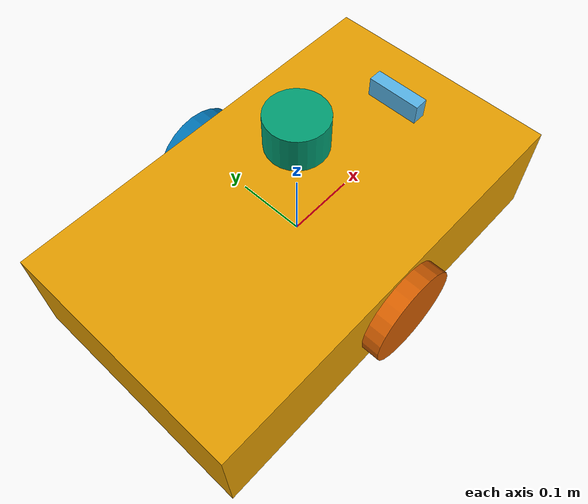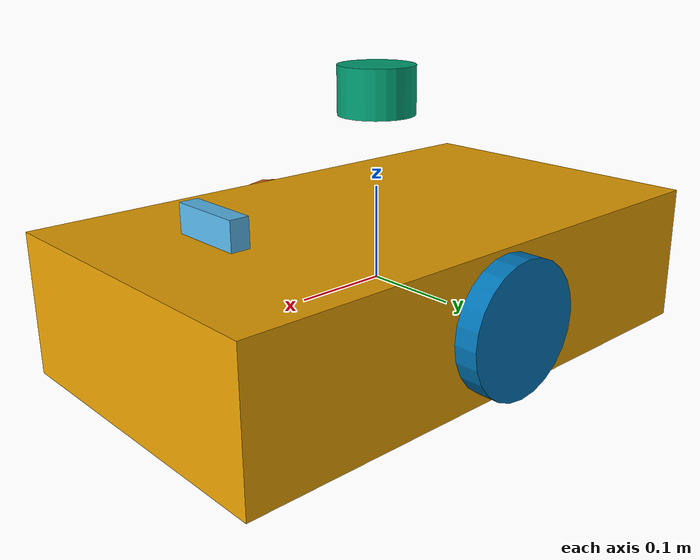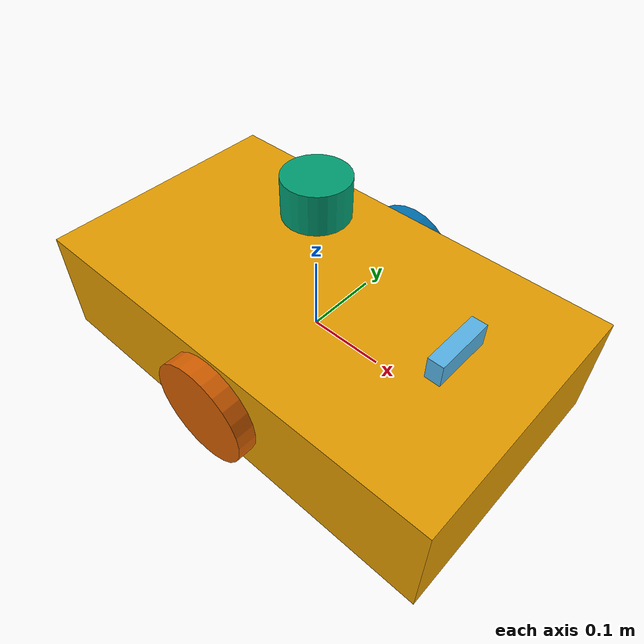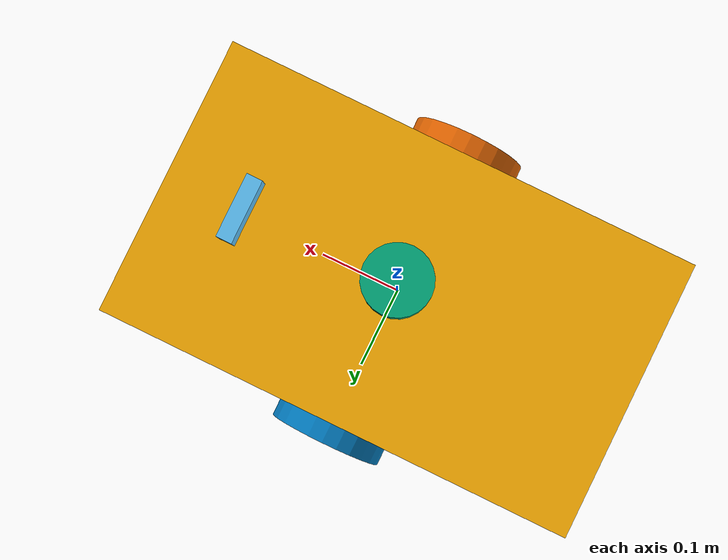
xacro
<?xml version="1.0"?>
<robot xmlns:xacro="http://www.ros.org/wiki/xacro" name="course_ackermann">

  <xacro:property name="base_length"  value="0.60"/>
  <xacro:property name="base_width"   value="0.35"/>
  <xacro:property name="base_height"  value="0.15"/>
  <xacro:property name="base_mass"    value="8.0"/>

  <xacro:property name="track"        value="0.36"/>
  <xacro:property name="wheel_radius" value="0.07"/>
  <xacro:property name="wheel_width"  value="0.04"/>
  <xacro:property name="wheel_mass"   value="0.5"/>

  <xacro:property name="camera_xyz" value="0.20 0.0 0.10"/>
  <xacro:property name="lidar_xyz"  value="0.0  0.0 0.20"/>
  <xacro:property name="imu_xyz"    value="-0.10 0.0 0.0"/>

  <xacro:macro name="box_inertia" params="m x y z">
    <inertial>
      <mass value="${m}"/>
      <inertia ixx="${m*(y*y+z*z)/12}" ixy="0" ixz="0"
               iyy="${m*(x*x+z*z)/12}" iyz="0"
               izz="${m*(x*x+y*y)/12}"/>
    </inertial>
  </xacro:macro>

  <xacro:macro name="cyl_inertia" params="m r h">
    <inertial>
      <mass value="${m}"/>
      <inertia ixx="${m*(3*r*r+h*h)/12}" ixy="0" ixz="0"
               iyy="${m*(3*r*r+h*h)/12}" iyz="0"
               izz="${m*r*r/2}"/>
    </inertial>
  </xacro:macro>

  <link name="base_link">
    <xacro:box_inertia m="${base_mass}" x="${base_length}" y="${base_width}" z="${base_height}"/>
    <visual>
      <geometry><box size="${base_length} ${base_width} ${base_height}"/></geometry>
    </visual>
    <collision>
      <geometry><box size="${base_length} ${base_width} ${base_height}"/></geometry>
    </collision>
  </link>

  <link name="camera_link">
    <xacro:box_inertia m="0.05" x="0.02" y="0.08" z="0.03"/>
    <visual><geometry><box size="0.02 0.08 0.03"/></geometry></visual>
    <collision><geometry><box size="0.02 0.08 0.03"/></geometry></collision>
  </link>
  <joint name="camera_joint" type="fixed">
    <parent link="base_link"/>
    <child  link="camera_link"/>
    <origin xyz="${camera_xyz}" rpy="0 0 0"/>
  </joint>

  <link name="lidar_link">
    <xacro:cyl_inertia m="0.10" r="0.04" h="0.05"/>
    <visual><geometry><cylinder radius="0.04" length="0.05"/></geometry></visual>
    <collision><geometry><cylinder radius="0.04" length="0.05"/></geometry></collision>
  </link>
  <joint name="lidar_joint" type="fixed">
    <parent link="base_link"/>
    <child  link="lidar_link"/>
    <origin xyz="${lidar_xyz}" rpy="0 0 0"/>
  </joint>

  <link name="imu_link">
    <xacro:box_inertia m="0.02" x="0.03" y="0.03" z="0.01"/>
    <visual><geometry><box size="0.03 0.03 0.01"/></geometry></visual>
    <collision><geometry><box size="0.03 0.03 0.01"/></geometry></collision>
  </link>
  <joint name="imu_joint" type="fixed">
    <parent link="base_link"/>
    <child  link="imu_link"/>
    <origin xyz="${imu_xyz}" rpy="0 0 0"/>
  </joint>

  <xacro:macro name="wheel" params="name y">
    <link name="${name}_link">
      <xacro:cyl_inertia m="${wheel_mass}" r="${wheel_radius}" h="${wheel_width}"/>
      <visual>
        <origin rpy="1.5707963 0 0" xyz="0 0 0"/>
        <geometry><cylinder radius="${wheel_radius}" length="${wheel_width}"/></geometry>
      </visual>
      <collision>
        <origin rpy="1.5707963 0 0" xyz="0 0 0"/>
        <geometry><cylinder radius="${wheel_radius}" length="${wheel_width}"/></geometry>
      </collision>
    </link>
    <joint name="${name}_joint" type="continuous">
      <parent link="base_link"/>
      <child  link="${name}_link"/>
      <origin xyz="0 ${y} 0" rpy="0 0 0"/>
      <axis xyz="0 1 0"/>
    </joint>
  </xacro:macro>

  <xacro:wheel name="front_left_wheel"  y="${ track/2}"/>
  <xacro:wheel name="front_right_wheel" y="${-track/2}"/>
  <xacro:wheel name="rear_left_wheel"   y="${ track/2}"/>
  <xacro:wheel name="rear_right_wheel"  y="${-track/2}"/>

</robot>
